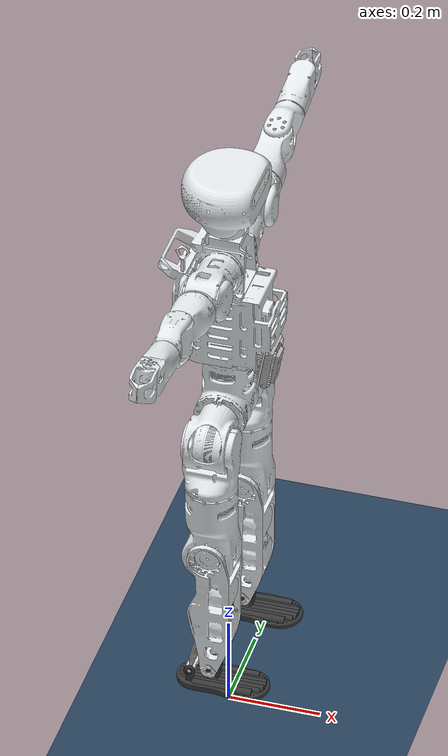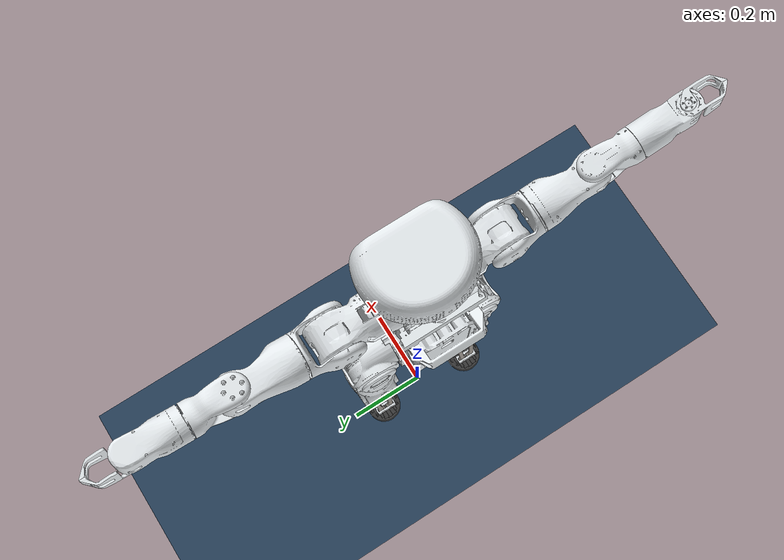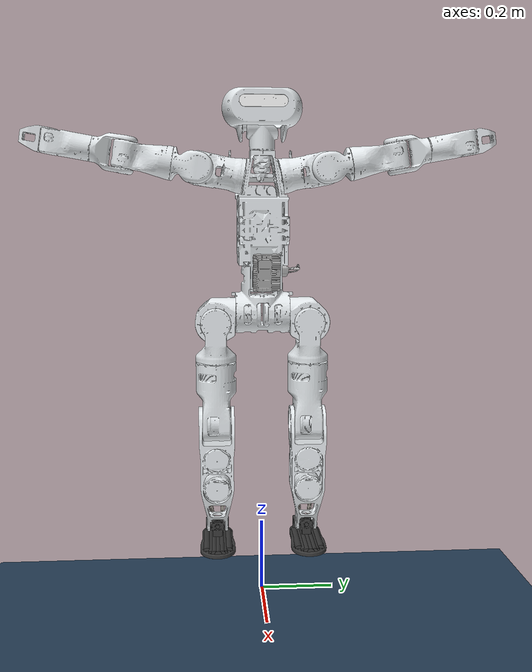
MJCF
<?xml version='1.0' encoding='utf-8'?>
<mujoco model="Khan_mini_simplified">
  <compiler angle="radian" meshdir="./meshes" />
  <asset>
    <mesh name="base_link" file="base_link.STL" />
    <mesh name="Left_hip_pitch_Link" file="Left_hip_pitch_Link.STL" />
    <mesh name="Left_hip_roll_Link" file="Left_hip_roll_Link.STL" />
    <mesh name="Left_hip_yaw_Link" file="Left_hip_yaw_Link.STL" />
    <mesh name="Left_knee_Link" file="Left_knee_Link.STL" />
    <mesh name="Left_ankle_pitch_Link" file="Left_ankle_pitch_Link.STL" />
    <mesh name="Left_ankle_roll_Link" file="Left_ankle_roll_Link.STL" />
    <mesh name="left_ankle_base_Link" file="left_ankle_base_Link.STL" />
    <mesh name="left_link1_down_Link" file="left_link1_down_Link.STL" />
    <mesh name="Left_link2_down_Link" file="Left_link2_down_Link.STL" />
    <mesh name="Left_drive1_Link" file="Left_drive1_Link.STL" />
    <mesh name="Left_link1_up_Link" file="Left_link1_up_Link.STL" />
    <mesh name="Left_drive2_Link" file="Left_drive2_Link.STL" />
    <mesh name="Left_link2_up_Link" file="Left_link2_up_Link.STL" />
    <mesh name="Right_hip_pitch_Link" file="Right_hip_pitch_Link.STL" />
    <mesh name="Right_hip_roll_Link" file="Right_hip_roll_Link.STL" />
    <mesh name="Right_hip_yaw_Link" file="Right_hip_yaw_Link.STL" />
    <mesh name="Right_knee_Link" file="Right_knee_Link.STL" />
    <mesh name="Right_ankle_pitch_Link" file="Right_ankle_pitch_Link.STL" />
    <mesh name="Right_ankle_roll_Link" file="Right_ankle_roll_Link.STL" />
    <mesh name="Right_ankle_base_Link" file="Right_ankle_base_Link.STL" />
    <mesh name="Right_link1_down_Link" file="Right_link1_down_Link.STL" />
    <mesh name="Right_link2_down_Link" file="Right_link2_down_Link.STL" />
    <mesh name="Right_drive1_Link" file="Right_drive1_Link.STL" />
    <mesh name="Right_link1_up_Link" file="Right_link1_up_Link.STL" />
    <mesh name="Right_drive2_Link" file="Right_drive2_Link.STL" />
    <mesh name="Right_link2_up_Link" file="Right_link2_up_Link.STL" />
    <mesh name="waist_yaw_Link" file="waist_yaw_Link.STL" />
    <mesh name="IMU_Link" file="IMU_Link.STL" />
    <mesh name="E1R_Link" file="E1R_Link.STL" />
    <mesh name="Left_shoulder_pitch_Link" file="Left_shoulder_pitch_Link.STL" />
    <mesh name="Left_shoulder_roll_Link" file="Left_shoulder_roll_Link.STL" />
    <mesh name="Left_shoulder_yaw_Link" file="Left_shoulder_yaw_Link.STL" />
    <mesh name="Left_elbow_Link" file="Left_elbow_Link.STL" />
    <mesh name="Left_wrist_roll_Link" file="Left_wrist_roll_Link.STL" />
    <mesh name="Left_wrist_yaw_Link" file="Left_wrist_yaw_Link.STL" />
    <mesh name="Right_shoulder_pitch_Link" file="Right_shoulder_pitch_Link.STL" />
    <mesh name="Right_shoulder_roll_Link" file="Right_shoulder_roll_Link.STL" />
    <mesh name="Right_shoulder_yaw_Link" file="Right_shoulder_yaw_Link.STL" />
    <mesh name="Right_elbow_Link" file="Right_elbow_Link.STL" />
    <mesh name="Right_wrist_roll_Link" file="Right_wrist_roll_Link.STL" />
    <mesh name="Right_wrist_yaw__Link" file="Right_wrist_yaw__Link.STL" />
    <mesh name="Neck_yaw_Link" file="Neck_yaw_Link.STL" />
    <mesh name="Neck_pitch_Link" file="Neck_pitch_Link.STL" />
    <mesh name="Camera_Link" file="Camera_Link.STL" />
  </asset>

  <worldbody>
    <site name="world"/>
    <body name="base_link" pos="0 0 0.793">
      <inertial pos="-4.221e-05 -1.5202e-05 0.03039" quat="0.706217 0.00357804 0.00350302 0.707978" mass="4.0179" diaginertia="0.00595011 0.00508393 0.00475947" />
      <joint name="base_joint" type="free"/>
      <geom type="mesh" rgba="0.89804 0.91765 0.92941 1" contype="0" conaffinity="0" mesh="base_link" />
      <body name="Left_hip_pitch_Link" pos="0 0.12485 0">
        <inertial pos="0.0019439 -0.0030968 -0.023644" quat="0.969923 0.242989 -0.00988392 -0.0103728" mass="1.4636" diaginertia="0.00220231 0.00166132 0.00138447" />
        <joint name="Left_hip_pitch_joint" pos="0 0 0" axis="0 1 0" range="-1.9198 1.2217" actuatorfrcrange="-120 120" armature="0.03" />
        <geom type="mesh" rgba="0.89804 0.91765 0.92941 1" mesh="Left_hip_pitch_Link" />
        <body name="Left_hip_roll_Link" pos="0 0 -0.025">
          <inertial pos="0.0080102 4.5979e-06 -0.061622" quat="0.989628 -1.06913e-05 0.143652 -0.000118939" mass="0.61135" diaginertia="0.0014548 0.001306 0.000724982" />
          <joint name="Left_hip_roll_joint" pos="0 0 0" axis="1 0 0" range="-0.5236 2.3562" actuatorfrcrange="-120 120" armature="0.03" />
          <geom type="mesh" rgba="0.89804 0.91765 0.92941 1" mesh="Left_hip_roll_Link" />
          <body name="Left_hip_yaw_Link">
            <inertial pos="0.001015 -0.0008594 -0.21192" quat="0.696349 -0.0667912 -0.0169266 0.714388" mass="2.9008" diaginertia="0.00529103 0.00433145 0.00330872" />
            <joint name="Left_hip_yaw_joint" pos="0 0 0" axis="0 0 1" range="-2.0071 3.5779" actuatorfrcrange="-120 120" armature="0.03" />
            <geom type="mesh" rgba="0.89804 0.91765 0.92941 1" mesh="Left_hip_yaw_Link" />
            <body name="Left_knee_Link" pos="0 0 -0.27505">
              <inertial pos="0.0106947 0.00359756 -0.128593" quat="0.989016 -0.0932623 -0.0585879 0.0985776" mass="3.34048" diaginertia="0.0161843 0.0145508 0.00608896" />
              <joint name="Left_knee_joint" pos="0 0 0" axis="0 1 0" range="-0.349 2.2689" actuatorfrcrange="-120 120" armature="0.03" />
              <geom type="mesh" rgba="0.89804 0.91765 0.92941 1" contype="0" conaffinity="0" mesh="Left_knee_Link" />
              <geom pos="-0.009 0 -0.1" quat="0.707107 0.000458321 -0.707107 -0.000458321" contype="0" conaffinity="0" type="mesh" rgba="0.89804 0.91765 0.92941 1" mesh="Left_drive1_Link" />
              <geom pos="-0.0211 0.027 -0.099965" quat="-0.673482 -0.000436526 -0.739203 -0.000479125" contype="0" conaffinity="0" type="mesh" rgba="0.647059 0.619608 0.588235 1" mesh="Left_link1_up_Link" />
              <geom pos="-0.009 0 -0.183" quat="0.000703211 0.707106 -0.000708405 -0.707106" contype="0" conaffinity="0" type="mesh" rgba="0.89804 0.91765 0.92941 1" mesh="Left_drive2_Link" />
              <geom pos="-0.0211002 -0.0269999 -0.182946" quat="0.000646274 0.650259 -0.000760705 -0.759712" contype="0" conaffinity="0" type="mesh" rgba="0.647059 0.619608 0.588235 1" mesh="Left_link2_up_Link" />
              <body name="Left_ankle_pitch_Link" pos="0 0 -0.3">
                <inertial pos="-1.0021e-07 4.6371e-09 0.0002973" quat="0.499994 0.499998 -0.500002 0.500006" mass="0.034237" diaginertia="7.1072e-06 6.0899e-06 2.0815e-06" />
                <joint name="Left_ankle_pitch_joint" pos="0 0 0" axis="0 -1 0" range="-0.5236 0.6108" actuatorfrcrange="-96 96" armature="0.016" />
                <geom type="mesh" rgba="0.22353 0.22353 0.22353 1" contype="0" conaffinity="0" mesh="Left_ankle_pitch_Link" />
                <body name="Left_ankle_roll_Link">
                  <inertial pos="0.0103203 -0.0015247 -0.0319726" quat="0.0218568 0.726224 0.0397545 0.68596" mass="0.529113" diaginertia="0.00138625 0.00115556 0.000327986" />
                  <joint name="Left_ankle_roll_joint" pos="0 0 0" axis="1 0 0" range="-0.349 0.349" actuatorfrcrange="-96 96" armature="0.016" />
                  <geom type="mesh" rgba="0.22353 0.22353 0.22353 1" mesh="Left_ankle_roll_Link" />
                  <geom size="0.01 0.065" pos="0.03 -0.03 -0.038" quat="0.707105 0 0.707108 0" type="cylinder" rgba="0.22353 0.22353 0.22353 1"/>
                  <geom size="0.008 0.085" pos="0.025 -0.018 -0.038" quat="0.707105 0 -0.707108 0" type="cylinder" rgba="0.22353 0.22353 0.22353 1"/>
                  <geom size="0.01 0.091" pos="0.025 -0.01 -0.038" quat="0.707105 0 -0.707108 0" type="cylinder" rgba="0.22353 0.22353 0.22353 1"/>
                  <geom size="0.01 0.093" pos="0.025 0 -0.038" quat="0.707105 0 -0.707108 0" type="cylinder" rgba="0.22353 0.22353 0.22353 1"/>
                  <geom size="0.01 0.091" pos="0.025 0.01 -0.038" quat="0.707105 0 -0.707108 0" type="cylinder" rgba="0.22353 0.22353 0.22353 1"/>
                  <geom size="0.008 0.085" pos="0.025 0.018 -0.038" quat="0.707105 0 -0.707108 0" type="cylinder" rgba="0.22353 0.22353 0.22353 1"/>
                  <geom size="0.01 0.065" pos="0.03 0.03 -0.038" quat="0.707105 0 0.707108 0" type="cylinder" rgba="0.22353 0.22353 0.22353 1"/>
                  <geom pos="-0.04055 0 -0.0075" quat="-0.499829 -0.499823 0.500177 -0.500171" type="mesh" contype="0" conaffinity="0" group="1" density="0" rgba="0.89804 0.91765 0.92941 1" mesh="left_ankle_base_Link"/>
                  <geom pos="-0.0404499 0.0115 -0.00749993" quat="-2.35214e-06 -0.739209 2.83685e-06 -0.673476" type="mesh" contype="0" conaffinity="0" group="1" density="0" rgba="0.776471 0.756863 0.737255 1" mesh="left_link1_down_Link"/>
                  <geom pos="-0.0405501 -0.0115 -0.0075" quat="-2.18657e-06 -0.759709 2.9924e-06 -0.650264" type="mesh" contype="0" conaffinity="0" group="1" density="0" rgba="0.776471 0.756863 0.737255 1" mesh="Left_link2_down_Link"/>
                </body>
              </body>
            </body>
          </body>
        </body>
      </body>
      <body name="Right_hip_pitch_Link" pos="0 -0.12485 0">
        <inertial pos="0.0019441 0.0030968 -0.023646" quat="0.969918 -0.243009 -0.00987507 0.0103815" mass="1.4636" diaginertia="0.00220221 0.00166134 0.00138446" />
        <joint name="Right_hip_pitch_joint" pos="0 0 0" axis="0 1 0" range="-1.9198 1.2217" actuatorfrcrange="-120 120" armature="0.03" />
        <geom type="mesh" rgba="0.89804 0.91765 0.92941 1" mesh="Right_hip_pitch_Link" />
        <body name="Right_hip_roll_Link" pos="0 0 -0.025">
          <inertial pos="0.0080102 4.5982e-06 -0.061622" quat="0.989628 -1.06914e-05 0.143652 -0.000118944" mass="0.61135" diaginertia="0.0014548 0.001306 0.000724982" />
          <joint name="Right_hip_roll_joint" pos="0 0 0" axis="-1 0 0" range="-0.5236 3.5779" actuatorfrcrange="-120 120" armature="0.03" />
          <geom type="mesh" rgba="0.89804 0.91765 0.92941 1" mesh="Right_hip_roll_Link" />
          <body name="Right_hip_yaw_Link">
            <inertial pos="0.001015 -0.0008594 -0.21192" quat="0.696349 -0.0667912 -0.0169266 0.714388" mass="2.9008" diaginertia="0.00529103 0.00433145 0.00330872" />
            <joint name="Right_hip_yaw_joint" pos="0 0 0" axis="0 0 -1" range="-2.0071 3.5779" actuatorfrcrange="-120 120" armature="0.03" />
            <geom type="mesh" rgba="0.89804 0.91765 0.92941 1" mesh="Right_hip_yaw_Link" />
            <body name="Right_knee_Link" pos="0 0 -0.27505">
              <inertial pos="0.0107034 0.00360644 -0.128583" quat="0.988505 -0.0936167 -0.0589754 0.10303" mass="3.33967" diaginertia="0.0161972 0.0145519 0.00606803" />
              <joint name="Right_knee_joint" pos="0 0 0" axis="0 1 0" range="-0.349 2.2689" actuatorfrcrange="-120 120" armature="0.03" />
              <geom type="mesh" rgba="0.89804 0.91765 0.92941 1" contype="0" conaffinity="0" mesh="Right_knee_Link" />
              <geom pos="-0.009 0 -0.1" quat="0.707107 0.000458321 -0.707107 -0.000458321" contype="0" conaffinity="0" type="mesh" rgba="0.898039 0.917647 0.929412 1" mesh="Right_drive1_Link" />
              <geom pos="-0.0211 0.027 -0.099965" quat="-0.673482 -0.000436526 -0.739203 -0.000479125" contype="0" conaffinity="0" type="mesh" rgba="0.647059 0.619608 0.588235 1" mesh="Right_link1_up_Link" />
              <geom pos="-0.009 0 -0.183" quat="0.000809277 0.707106 -0.000814471 -0.707106" contype="0" conaffinity="0" type="mesh" rgba="0.898039 0.917647 0.929412 1" mesh="Right_drive2_Link" />
              <geom pos="-0.0211002 -0.0269998 -0.182938" quat="0.000744158 0.650558 -0.000874369 -0.759455" contype="0" conaffinity="0" type="mesh" rgba="0.647059 0.619608 0.588235 1" mesh="Right_link2_up_Link" />
              <body name="Right_ankle_pitch_Link" pos="0 0 -0.3">
                <inertial pos="-1.0021e-07 4.6371e-09 0.0002973" quat="0.499994 0.499998 -0.500002 0.500006" mass="0.034237" diaginertia="7.1072e-06 6.0899e-06 2.0815e-06" />
                <joint name="Right_ankle_pitch_joint" pos="0 0 0" axis="0 -1 0" range="-0.5236 0.6108" actuatorfrcrange="-96 96" armature="0.016" />
                <geom type="mesh" rgba="0.22353 0.22353 0.22353 1" contype="0" conaffinity="0" mesh="Right_ankle_pitch_Link" />
                <body name="Right_ankle_roll_Link">
                  <inertial pos="0.01058 -0.000234818 -0.031974" quat="0.0111506 0.726073 -0.00179154 0.687525" mass="0.529114" diaginertia="0.00138235 0.001158 0.00032583" />
                  <joint name="Right_ankle_roll_joint" pos="0 0 0" axis="-1 0 0" range="-0.349 0.349" actuatorfrcrange="-96 96" armature="0.016" />
                  <geom type="mesh" rgba="0.22353 0.22353 0.22353 1" mesh="Right_ankle_roll_Link" />
                  <geom size="0.01 0.065" pos="0.03 -0.03 -0.038" quat="0.707105 0 0.707108 0" type="cylinder" rgba="0.22353 0.22353 0.22353 1"/>
                  <geom size="0.008 0.085" pos="0.025 -0.018 -0.038" quat="0.707105 0 -0.707108 0" type="cylinder" rgba="0.22353 0.22353 0.22353 1"/>
                  <geom size="0.01 0.091" pos="0.025 -0.01 -0.038" quat="0.707105 0 -0.707108 0" type="cylinder" rgba="0.22353 0.22353 0.22353 1"/>
                  <geom size="0.01 0.093" pos="0.025 0 -0.038" quat="0.707105 0 -0.707108 0" type="cylinder" rgba="0.22353 0.22353 0.22353 1"/>
                  <geom size="0.01 0.091" pos="0.025 0.01 -0.038" quat="0.707105 0 -0.707108 0" type="cylinder" rgba="0.22353 0.22353 0.22353 1"/>
                  <geom size="0.008 0.085" pos="0.025 0.018 -0.038" quat="0.707105 0 -0.707108 0" type="cylinder" rgba="0.22353 0.22353 0.22353 1"/>
                  <geom size="0.01 0.065" pos="0.03 0.03 -0.038" quat="0.707105 0 0.707108 0" type="cylinder" rgba="0.22353 0.22353 0.22353 1"/>
                  <geom pos="-0.04055 0 -0.0075" quat="0.499825 0.499827 -0.500173 0.500175" type="mesh" contype="0" conaffinity="0" group="1" density="0" rgba="0.898039 0.917647 0.929412 1" mesh="Right_ankle_base_Link"/>
                  <geom pos="-0.04045 0.0115 -0.00749993" quat="-2.59549e-06 0.739209 2.59368e-06 0.673476" type="mesh" contype="0" conaffinity="0" group="1" density="0" rgba="0.776471 0.756863 0.737255 1" mesh="Right_link1_down_Link"/>
                  <geom pos="-0.04045 -0.0115 -0.00749993" quat="-2.59825e-06 0.707116 2.59644e-06 0.707097" type="mesh" contype="0" conaffinity="0" group="1" density="0" rgba="0.776471 0.756863 0.737255 1" mesh="Right_link2_down_Link"/>
                     </body>
              </body>
            </body>
          </body>
        </body>
      </body>
      <body name="waist_yaw_Link" pos="0 0 0.22385">
        <site name="waist_imu" pos="0 0 0" quat="1 0 0 0"/>
        <inertial pos="-0.000349812 0.00300369 0.024462" quat="0.775234 0.520055 -0.206205 -0.293316" mass="7.33705" diaginertia="0.0162451 0.0149768 0.0117619" />
        <joint name="waist_yaw_joint" pos="0 0 0" axis="0 0 1" range="-2.0071 3.5779" actuatorfrcrange="-120 120" armature="0.03" />
        <geom type="mesh" rgba="0.89804 0.91765 0.92941 1" mesh="waist_yaw_Link" />
        <geom pos="0.0502 0 -0.09" quat="1 0 0 0" contype="0" conaffinity="0" type="mesh" rgba="1 1 1 1" mesh="IMU_Link" />
        <geom pos="0.1061 0 -0.114729" quat="0.704416 0.704416 0.0616284 -0.0616284" contype="0" conaffinity="0" type="mesh" rgba="0.698039 0.698039 0.698039 1" mesh="E1R_Link" />
        <body name="Left_shoulder_pitch_Link" pos="0 0.16702 0.15333">
          <inertial pos="-0.00295725 -0.0462946 -0.00817711" quat="0.643666 0.763789 0.0321812 0.0358471" mass="2.47796" diaginertia="0.00224676 0.00176315 0.00170115" />
          <joint name="Left_shoulder_pitch_joint" pos="0 0 0" axis="0 0.984808 0.17365" range="-1.5707 1.5707" actuatorfrcrange="-96 96" armature="0.016" />
          <geom type="mesh" rgba="0.898039 0.917647 0.929412 1" mesh="Left_shoulder_pitch_Link" />
          <body name="Left_shoulder_roll_Link">
            <inertial pos="0.00180398 0.0226445 0.00399009" quat="0.633649 0.75498 -0.108673 -0.129165" mass="0.308589" diaginertia="0.000451064 0.000391763 0.000200802" />
            <joint name="Left_shoulder_roll_joint" pos="0 0 0" axis="1 0 0" range="-1.9189 1.9189" actuatorfrcrange="-96 96" armature="0.016" />
            <geom type="mesh" rgba="0.898039 0.917647 0.929412 1" mesh="Left_shoulder_roll_Link" />
            <body name="Left_shoulder_yaw_Link">
              <inertial pos="-0.000805237 0.136526 0.0255704" quat="0.438011 0.545949 -0.575039 0.423576" mass="1.35563" diaginertia="0.00123538 0.00105429 0.000677073" />
              <joint name="Left_shoulder_yaw_joint" pos="0 0 0" axis="0 0.984808 0.17365" range="-1.5707 1.5707" actuatorfrcrange="-36 36" armature="0.01" />
              <geom type="mesh" rgba="0.898039 0.917647 0.929412 1" mesh="Left_shoulder_yaw_Link" />
              <body name="Left_elbow_Link" pos="0 0.18706 0.032984">
                <inertial pos="-2.89218e-06 0.0344661 0.00737001" quat="0.536038 0.461119 -0.461154 0.536069" mass="0.257659" diaginertia="0.000354482 0.000333888 0.000118167" />
                <joint name="Left_elbow_joint" pos="0 0 0" axis="0 0.17365 -0.984808" range="-0.8726 2.2689" actuatorfrcrange="-36 36" armature="0.01" />
                <geom type="mesh" rgba="0.898039 0.917647 0.929412 1" mesh="Left_elbow_Link" />
                <body name="Left_wrist_roll_Link">
                  <inertial pos="-0.000591176 0.149995 0.0258031" quat="0.488111 0.51023 -0.522781 0.477612" mass="0.953634" diaginertia="0.000501378 0.000430218 0.000296089" />
                  <joint name="Left_wrist_roll_joint" pos="0 0 0" axis="0 0.984808 0.17365" range="-1.5707 1.5707" actuatorfrcrange="-8 8" armature="0.01" />
                  <geom type="mesh" rgba="0.898039 0.917647 0.929412 1" mesh="Left_wrist_roll_Link" />
                  <body name="Left_wrist_yaw_Link" pos="0 0.18662 0.032906">
                    <inertial pos="0.0135383 0.0397407 0.000913094" quat="0.404398 0.905302 0.103095 -0.0791299" mass="0.0392162" diaginertia="3.84309e-05 3.17751e-05 1.25159e-05" />
                    <joint name="Left_wrist_yaw_joint" pos="0 0 0" axis="0 0.17365 -0.984808" range="0 1.5707" actuatorfrcrange="-8 8" armature="0.01" />
                    <geom type="mesh" rgba="0.898039 0.917647 0.929412 1" mesh="Left_wrist_yaw_Link" />
                  </body>
                </body>
              </body>
            </body>
          </body>
        </body>
        <body name="Right_shoulder_pitch_Link" pos="0 -0.16702 0.15333">
          <inertial pos="-0.0029573 0.0462995 -0.00814978" quat="0.766513 0.640419 -0.0379202 -0.029718" mass="2.47795" diaginertia="0.00224675 0.00176313 0.00170114" />
          <joint name="Right_shoulder_pitch_joint" pos="0 0 0" axis="0 0.984808 -0.17365" range="-1.5707 1.5707" actuatorfrcrange="-96 96" armature="0.016" />
          <geom type="mesh" rgba="0.898039 0.917647 0.929412 1" mesh="Right_shoulder_pitch_Link" />
          <body name="Right_shoulder_roll_Link">
            <inertial pos="0.00180464 -0.0226445 0.00398831" quat="0.755031 0.633604 0.12926 0.10847" mass="0.308586" diaginertia="0.000450937 0.000391659 0.000200695" />
            <joint name="Right_shoulder_roll_joint" pos="0 0 0" axis="-1 0 0" range="-1.9189 1.9189" actuatorfrcrange="-96 96" armature="0.016" />
            <geom type="mesh" rgba="0.898039 0.917647 0.929412 1" mesh="Right_shoulder_roll_Link" />
            <body name="Right_shoulder_yaw_Link">
              <inertial pos="-0.000805073 -0.137038 0.022666" quat="0.516977 0.492749 -0.461633 0.526145" mass="1.35564" diaginertia="0.00123542 0.00105445 0.000677145" />
              <joint name="Right_shoulder_yaw_joint" pos="0 0 0" axis="0 0.984808 -0.17365" range="-1.5707 1.5707" actuatorfrcrange="-36 36" armature="0.01" />
              <geom type="mesh" rgba="0.898039 0.917647 0.929412 1" mesh="Right_shoulder_yaw_Link" />
              <body name="Right_elbow_Link" pos="0 -0.18706 0.032984">
                <inertial pos="-1.43883e-06 -0.0349081 0.00485783" quat="0.608073 0.361097 -0.360987 0.607901" mass="0.257655" diaginertia="0.00035447 0.000333878 0.000118155" />
                <joint name="Right_elbow_joint" pos="0 0 0" axis="0 0.17365 0.984808" range="-0.8726 2.2689" actuatorfrcrange="-36 36" armature="0.01" />
                <geom type="mesh" rgba="0.898039 0.917647 0.929412 1" mesh="Right_elbow_Link" />
                <body name="Right_wrist_roll_Link">
                  <inertial pos="-0.000591125 -0.149775 0.0270544" quat="0.561142 0.431898 -0.417717 0.569295" mass="0.953625" diaginertia="0.000501371 0.000430213 0.000296086" />
                  <joint name="Right_wrist_roll_joint" pos="0 0 0" axis="0 0.984808 -0.17365" range="-1.5707 1.5707" actuatorfrcrange="-8 8" armature="0.01" />
                  <geom type="mesh" rgba="0.898039 0.917647 0.929412 1" mesh="Right_wrist_roll_Link" />
                  <body name="Right_wrist_yaw__Link" pos="0 -0.18662 0.032906">
                    <inertial pos="0.0135383 -0.0376562 0.0127341" quat="0.555458 0.821326 -0.0877878 0.0958305" mass="0.0392161" diaginertia="3.84308e-05 3.1775e-05 1.25159e-05" />
                    <joint name="Right_wrist_yaw_joint" pos="0 0 0" axis="0 0.17365 0.984808" range="0 1.5707" actuatorfrcrange="-8 8" armature="0.01" />
                    <geom type="mesh" rgba="0.898039 0.917647 0.929412 1" mesh="Right_wrist_yaw__Link" />
                  </body>
                </body>
              </body>
            </body>
          </body>
        </body>
        <body name="Neck_yaw_Link" pos="0 0 0.26">
          <inertial pos="5.4414e-05 -0.0125166 -0.006612" quat="0.693007 0.147475 -0.165996 0.685885" mass="0.453938" diaginertia="0.000218388 0.000177857 0.000146173" />
          <joint name="Neck_yaw_joint" pos="0 0 0" axis="0 0 1" range="-1.5707 1.5707" actuatorfrcrange="-8 8" armature="0.01" />
          <geom type="mesh" rgba="0.898039 0.917647 0.929412 1" mesh="Neck_yaw_Link" />
          <body name="Neck_pitch_Link">
            <inertial pos="0.0117025 -0.0119247 0.0306177" quat="0.515126 0.674935 -0.332561 0.4105" mass="0.479936" diaginertia="0.00207785 0.00171617 0.000716021" />
            <joint name="Neck_pitch_joint" pos="0 0 0" axis="0 1 0" range="-0.6108 0.6108" actuatorfrcrange="-8 8" armature="0.01" />
            <geom type="mesh" rgba="0.898039 0.917647 0.929412 1" mesh="Neck_pitch_Link" />
            <geom pos="0.0665 0 0.055" quat="1 0 0 0" type="mesh" rgba="1 1 1 1" mesh="Camera_Link" />
          </body>
        </body>
      </body>
    </body>
  </worldbody>
  <actuator>
    <motor name="Left_hip_pitch_motor" joint="Left_hip_pitch_joint" />
        <motor name="Left_hip_roll_motor" joint="Left_hip_roll_joint" />
        <motor name="Left_hip_yaw_motor" joint="Left_hip_yaw_joint" />
        <motor name="Left_knee_motor" joint="Left_knee_joint" />
        <motor name="Left_ankle_pitch_motor" joint="Left_ankle_pitch_joint" />
        <motor name="Left_ankle_roll_motor" joint="Left_ankle_roll_joint" />
        <motor name="Right_hip_pitch_motor" joint="Right_hip_pitch_joint" />
        <motor name="Right_hip_roll_motor" joint="Right_hip_roll_joint" />
        <motor name="Right_hip_yaw_motor" joint="Right_hip_yaw_joint" />
        <motor name="Right_knee_motor" joint="Right_knee_joint" />
        <motor name="Right_ankle_pitch_motor" joint="Right_ankle_pitch_joint" />
        <motor name="Right_ankle_roll_motor" joint="Right_ankle_roll_joint" />
        <motor name="waist_yaw_motor" joint="waist_yaw_joint" />
        <motor name="Left_shoulder_pitch_motor" joint="Left_shoulder_pitch_joint" />
        <motor name="Left_shoulder_roll_motor" joint="Left_shoulder_roll_joint" />
        <motor name="Left_shoulder_yaw_motor" joint="Left_shoulder_yaw_joint" />
        <motor name="Left_elbow_motor" joint="Left_elbow_joint" />
        <motor name="Left_wrist_roll_motor" joint="Left_wrist_roll_joint" />
        <motor name="Left_wrist_yaw_motor" joint="Left_wrist_yaw_joint" />
        <motor name="Right_shoulder_pitch_motor" joint="Right_shoulder_pitch_joint" />
        <motor name="Right_shoulder_roll_motor" joint="Right_shoulder_roll_joint" />
        <motor name="Right_shoulder_yaw_motor" joint="Right_shoulder_yaw_joint" />
        <motor name="Right_elbow_motor" joint="Right_elbow_joint" />
        <motor name="Right_wrist_roll_motor" joint="Right_wrist_roll_joint" />
        <motor name="Right_wrist_yaw_motor" joint="Right_wrist_yaw_joint" />
        <motor name="Neck_yaw_motor" joint="Neck_yaw_joint" />
        <motor name="Neck_pitch_motor" joint="Neck_pitch_joint" />
  </actuator>

  <visual>
    <headlight diffuse="0.6 0.6 0.6" ambient="0.1 0.1 0.1" specular="0.9 0.9 0.9"/>
    <rgba haze="0.15 0.25 0.35 1"/>
    <global azimuth="-140" elevation="-20"/>
  </visual>
  <asset>
    <texture type="skybox" builtin="flat" rgb1="0 0 0" rgb2="0 0 0" width="512" height="3072"/>
    <texture type="2d" name="groundplane" builtin="checker" mark="edge" rgb1="0.2 0.3 0.4" rgb2="0.1 0.2 0.3" markrgb="0.8 0.8 0.8" width="300" height="300"/>
    <material name="groundplane" texture="groundplane" texuniform="true" texrepeat="5 5" reflectance="0.2"/>
  </asset>
  <worldbody>
    <light pos="1 0 3.5" dir="0 0 -1" directional="true"/>
    <geom name="floor" pos="0 0 -0.05" size="0 0 0.05" type="plane" material="groundplane"/>
  </worldbody>
  <sensor>
  <!-- 2. 挂载陀螺仪传感器，用于测量 waist_imu 相对于世界的角速度，并在本地 site 系下投影输出 -->
  <gyro name="waist_gyro" site="waist_imu"/>

  <!-- 3. 挂载姿态四元数传感器，用于获取 waist_imu 坐标系在世界坐标系下的绝对姿态（WXYZ） -->
  <framequat name="waist_quat" objtype="site" objname="waist_imu"/>
  </sensor>
</mujoco>
